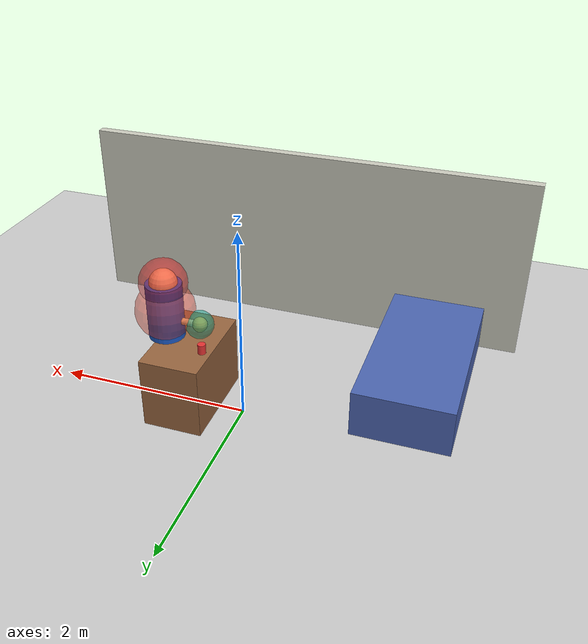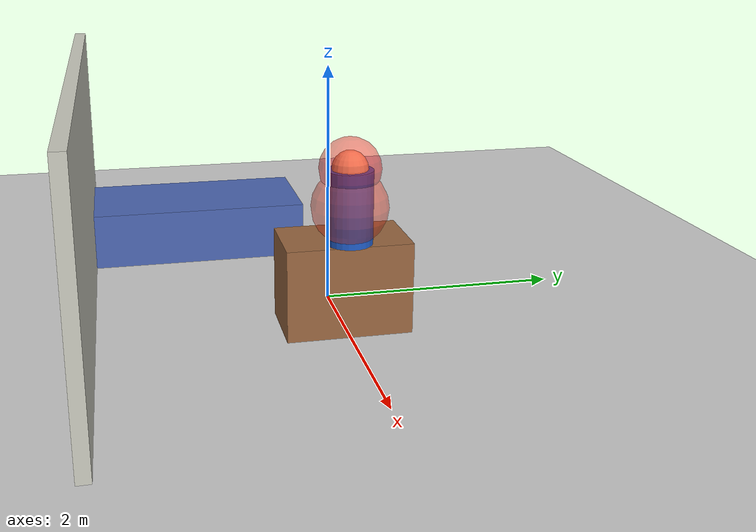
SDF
<?xml version="1.0" ?>
<sdf version="1.6">
  <world name="eldercare_room">
    <light name="sun" type="directional">
      <cast_shadows>true</cast_shadows>
      <pose>0 0 8 0 0 0</pose>
      <diffuse>0.8 0.8 0.8 1</diffuse>
      <specular>0.2 0.2 0.2 1</specular>
      <attenuation>
        <range>1000</range>
        <constant>0.9</constant>
        <linear>0.01</linear>
        <quadratic>0.001</quadratic>
      </attenuation>
      <direction>-0.5 0.1 -0.9</direction>
    </light>
    <model name="ground_plane">
      <static>true</static>
      <link name="link">
        <collision name="collision">
          <geometry><plane><normal>0 0 1</normal><size>20 20</size></plane></geometry>
        </collision>
        <visual name="visual">
          <geometry><plane><normal>0 0 1</normal><size>20 20</size></plane></geometry>
          <material>
            <ambient>0.8 0.8 0.8 1</ambient>
            <diffuse>0.8 0.8 0.8 1</diffuse>
          </material>
        </visual>
      </link>
    </model>

    <!-- Room walls (simple) -->
    <model name="wall_back">
      <static>true</static>
      <pose>0 -2.0 1.0 0 0 0</pose>
      <link name="link">
        <collision name="c"><geometry><box><size>5 0.1 2</size></box></geometry></collision>
        <visual name="v"><geometry><box><size>5 0.1 2</size></box></geometry>
          <material><ambient>0.8 0.8 0.75 1</ambient></material></visual>
      </link>
    </model>

    <!-- Table next to the arm -->
    <model name="care_table">
      <static>true</static>
      <pose>0.55 0.0 0.37 0 0 0</pose>
      <link name="link">
        <collision name="c"><geometry><box><size>0.6 1.0 0.74</size></box></geometry></collision>
        <visual name="v"><geometry><box><size>0.6 1.0 0.74</size></box></geometry>
          <material><ambient>0.55 0.35 0.2 1</ambient><diffuse>0.6 0.4 0.25 1</diffuse></material></visual>
      </link>
    </model>

    <!-- Bed (for wheelchair scenario) -->
    <model name="bed">
      <static>true</static>
      <pose>-1.6 -1.0 0.25 0 0 0</pose>
      <link name="link">
        <collision name="c"><geometry><box><size>1.0 2.0 0.5</size></box></geometry></collision>
        <visual name="v"><geometry><box><size>1.0 2.0 0.5</size></box></geometry>
          <material><ambient>0.3 0.4 0.7 1</ambient></material></visual>
      </link>
    </model>

    <model name="elderly_person">
      <static>true</static>
      <pose>0.78 0.0 0.0 0 0 0</pose>

      <link name="torso">
        <pose>0 0 1.05 0 0 0</pose>
        <visual name="body">
          <geometry><cylinder><radius>0.18</radius><length>0.58</length></cylinder></geometry>
          <material>
            <ambient>0.12 0.36 0.78 1</ambient>
            <diffuse>0.12 0.36 0.78 1</diffuse>
          </material>
        </visual>
        <visual name="chest_risk">
          <transparency>0.58</transparency>
          <geometry><sphere><radius>0.30</radius></sphere></geometry>
          <material>
            <ambient>0.95 0.22 0.12 0.42</ambient>
            <diffuse>0.95 0.22 0.12 0.42</diffuse>
          </material>
        </visual>
      </link>

      <link name="head">
        <pose>0 0 1.35 0 0 0</pose>
        <visual name="head">
          <geometry><sphere><radius>0.14</radius></sphere></geometry>
          <material>
            <ambient>0.95 0.73 0.50 1</ambient>
            <diffuse>0.95 0.73 0.50 1</diffuse>
          </material>
        </visual>
        <visual name="head_risk">
          <transparency>0.55</transparency>
          <geometry><sphere><radius>0.24</radius></sphere></geometry>
          <material>
            <ambient>0.95 0.08 0.08 0.45</ambient>
            <diffuse>0.95 0.08 0.08 0.45</diffuse>
          </material>
        </visual>
      </link>

      <link name="reaching_arm">
        <pose>-0.18 0 0.95 0 1.5708 0</pose>
        <visual name="forearm">
          <geometry><cylinder><radius>0.035</radius><length>0.36</length></cylinder></geometry>
          <material>
            <ambient>0.95 0.73 0.50 1</ambient>
            <diffuse>0.95 0.73 0.50 1</diffuse>
          </material>
        </visual>
      </link>

      <link name="hand">
        <pose>-0.36 0 0.95 0 0 0</pose>
        <visual name="hand">
          <geometry><sphere><radius>0.075</radius></sphere></geometry>
          <material>
            <ambient>0.98 0.62 0.20 1</ambient>
            <diffuse>0.98 0.62 0.20 1</diffuse>
          </material>
        </visual>
        <visual name="handover_target">
          <transparency>0.50</transparency>
          <geometry><sphere><radius>0.14</radius></sphere></geometry>
          <material>
            <ambient>0.00 0.63 0.53 0.50</ambient>
            <diffuse>0.00 0.63 0.53 0.50</diffuse>
          </material>
        </visual>
      </link>
    </model>

    <!-- Object to hand over (cup) on the table, within arm reach -->
    <model name="cup">
      <pose>0.34 0.16 0.79 0 0 0</pose>
      <link name="link">
        <inertial><mass>0.2</mass>
          <inertia><ixx>0.0003</ixx><iyy>0.0003</iyy><izz>0.0002</izz>
            <ixy>0</ixy><ixz>0</ixz><iyz>0</iyz></inertia></inertial>
        <collision name="c"><geometry><cylinder><radius>0.04</radius><length>0.1</length></cylinder></geometry></collision>
        <visual name="v"><geometry><cylinder><radius>0.04</radius><length>0.1</length></cylinder></geometry>
          <material><ambient>0.9 0.2 0.2 1</ambient></material></visual>
      </link>
    </model>

    <gui><camera name="user_camera"><pose>-2.5 -2.5 2.2 0 0.4 0.7</pose></camera></gui>
  </world>
</sdf>
